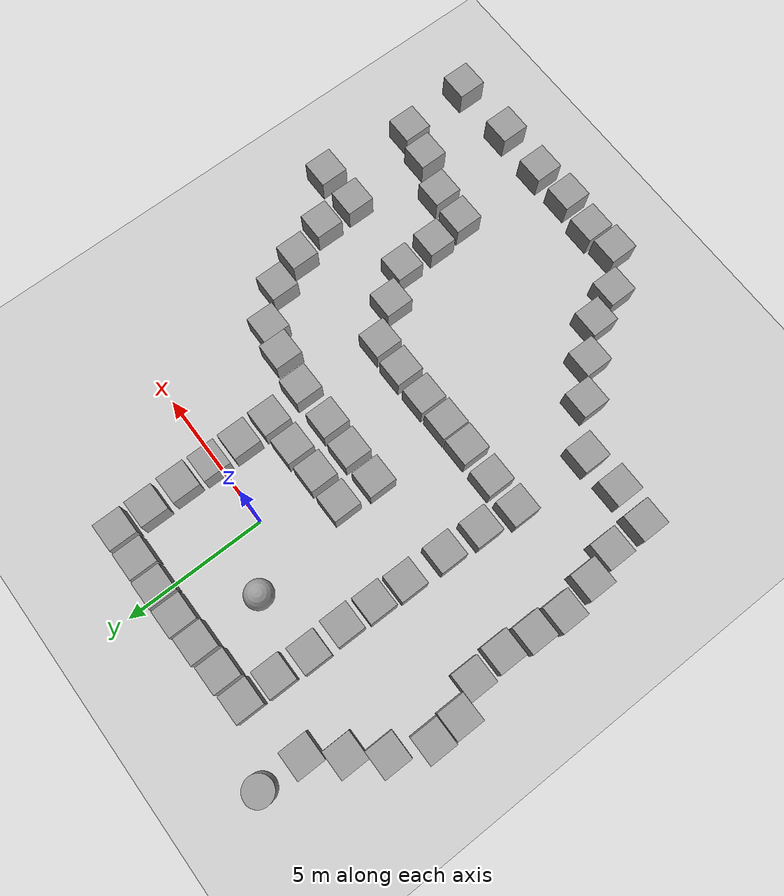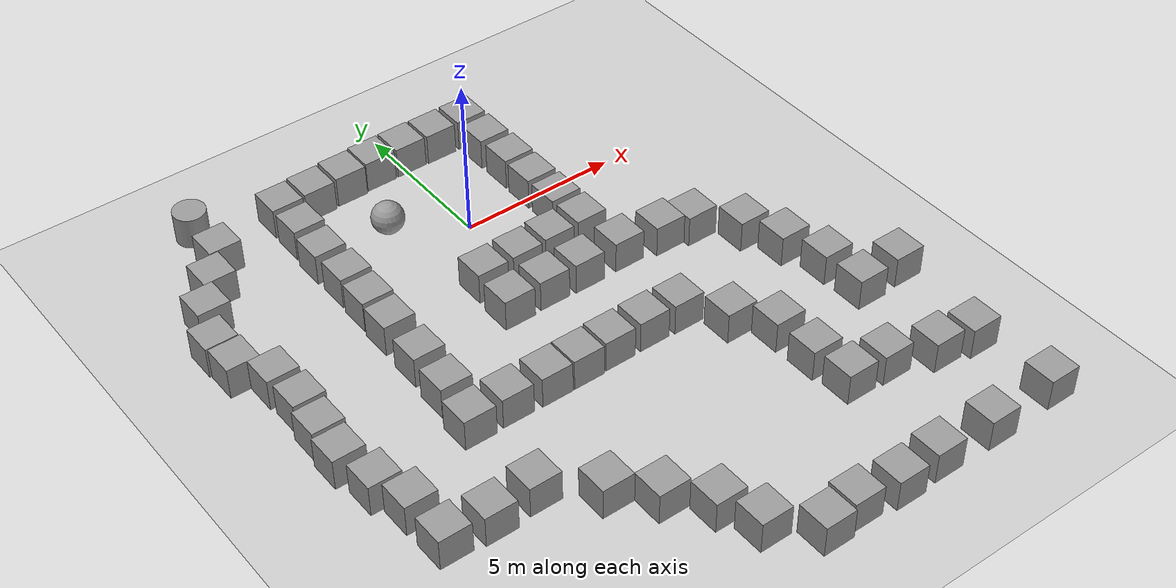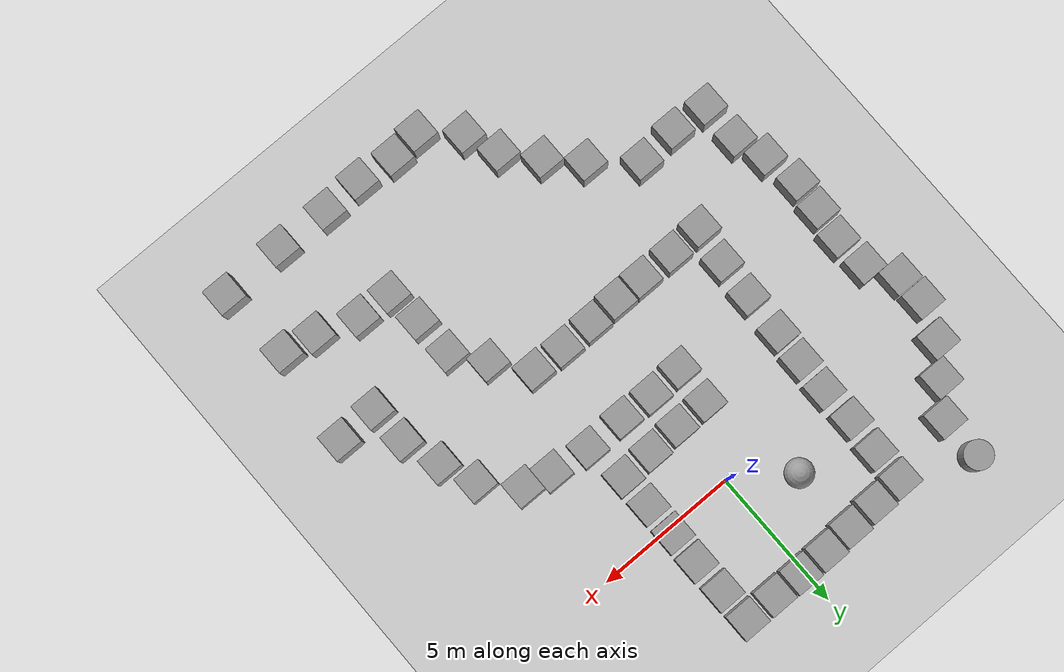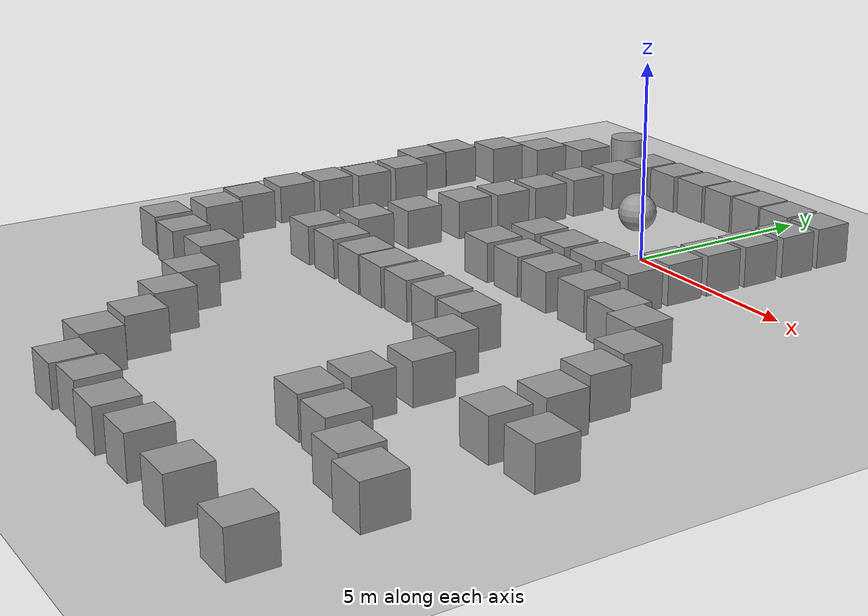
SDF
<sdf version="1.7">
 <world name="default">
  <plugin filename="gz-sim-physics-system" name="gz::sim::systems::Physics"/>
  <plugin filename="gz-sim-user-commands-system" name="gz::sim::systems::UserCommands"/>
  <plugin filename="gz-sim-scene-broadcaster-system" name="gz::sim::systems::SceneBroadcaster"/>
  <plugin filename="gz-sim-sensors-system" name="gz::sim::systems::Sensors">
   <render_engine>ogre2</render_engine>
  </plugin>
  <plugin filename="gz-sim-imu-system" name="gz::sim::systems::Imu"/>
  <light name="sun" type="directional">
   <pose>0 0 10 0 -0 0</pose>
   <diffuse>0.8 0.8 0.8 1</diffuse>
   <specular>0.2 0.2 0.2 1</specular>
   <attenuation>
    <range>1000</range>
    <constant>0.9</constant>
    <linear>0.01</linear>
    <quadratic>0.001</quadratic>
   </attenuation>
   <direction>-0.5 0.1 -0.9</direction>
   <spot><inner_angle>0</inner_angle><outer_angle>0</outer_angle><falloff>0</falloff></spot>
  </light>
  <model name="ground_plane">
   <static>1</static>
   <link name="link">
    <collision name="collision">
     <geometry><plane><normal>0 0 1</normal><size>100 100</size></plane></geometry>
     <surface>
      <contact><collide_bitmask>65535</collide_bitmask></contact>
      <friction><ode><mu>100</mu><mu2>50</mu2></ode></friction>
     </surface>
    </collision>
    <visual name="visual">
     <cast_shadows>0</cast_shadows>
     <geometry><plane><normal>0 0 1</normal><size>100 100</size></plane></geometry>
     <material>
      <script><uri>file://media/materials/scripts/gazebo.material</uri><name>Gazebo/Grey</name></script>
     </material>
    </visual>
   </link>
  </model>
  <gravity>0 0 -9.8</gravity>
  <magnetic_field>6e-06 2.3e-05 -4.2e-05</magnetic_field>
  <atmosphere type="adiabatic"/>
  <physics type="ode">
   <max_step_size>0.001</max_step_size>
   <real_time_factor>1</real_time_factor>
   <real_time_update_rate>1000</real_time_update_rate>
  </physics>
  <scene><ambient>0.4 0.4 0.4 1</ambient><background>0.7 0.7 0.7 1</background><shadows>1</shadows></scene>
  <audio><device>default</device></audio>
  <spherical_coordinates>
   <surface_model>EARTH_WGS84</surface_model>
   <latitude_deg>0</latitude_deg>
   <longitude_deg>0</longitude_deg>
   <elevation>0</elevation>
   <heading_deg>0</heading_deg>
  </spherical_coordinates>
  <model name="unit_sphere">
   <pose>-1.89959 1.34417 0.5 0 -0 0</pose>
   <link name="link">
    <inertial>
     <mass>1</mass>
     <inertia><ixx>0.1</ixx><ixy>0</ixy><ixz>0</ixz><iyy>0.1</iyy><iyz>0</iyz><izz>0.1</izz></inertia>
    </inertial>
    <collision name="collision"><geometry><sphere><radius>0.5</radius></sphere></geometry></collision>
    <visual name="visual">
     <geometry><sphere><radius>0.5</radius></sphere></geometry>
     <material>
      <script><name>Gazebo/Grey</name><uri>file://media/materials/scripts/gazebo.material</uri></script>
     </material>
    </visual>
   </link>
  </model>
  <model name="unit_cylinder">
   <pose>-6.5073 4.57267 0.499994 -3e-06 -1e-06 -0</pose>
   <link name="link">
    <inertial>
     <mass>1</mass>
     <inertia><ixx>0.145833</ixx><ixy>0</ixy><ixz>0</ixz><iyy>0.145833</iyy><iyz>0</iyz><izz>0.125</izz></inertia>
    </inertial>
    <collision name="collision">
     <geometry><cylinder><radius>0.5</radius><length>1</length></cylinder></geometry>
    </collision>
    <visual name="visual">
     <geometry><cylinder><radius>0.5</radius><length>1</length></cylinder></geometry>
     <material>
      <script><name>Gazebo/Grey</name><uri>file://media/materials/scripts/gazebo.material</uri></script>
     </material>
    </visual>
   </link>
  </model>
  <model name="unit_box">
   <pose>-4.1569 3.53697 0.499995 -1e-05 -0 -0</pose>
   <link name="link">
    <inertial>
     <mass>1</mass>
     <inertia>
      <ixx>0.166667</ixx>
      <ixy>0</ixy>
      <ixz>0</ixz>
      <iyy>0.166667</iyy>
      <iyz>0</iyz>
      <izz>0.166667</izz>
     </inertia>
    </inertial>
    <collision name="collision"><geometry><box><size>1 1 1</size></box></geometry></collision>
    <visual name="visual">
     <geometry><box><size>1 1 1</size></box></geometry>
     <material>
      <script><name>Gazebo/Grey</name><uri>file://media/materials/scripts/gazebo.material</uri></script>
     </material>
    </visual>
   </link>
  </model>
  <model name="unit_box_0">
   <pose>-3.06799 3.59313 0.499995 1e-05 -0 0</pose>
   <link name="link">
    <inertial>
     <mass>1</mass>
     <inertia>
      <ixx>0.166667</ixx>
      <ixy>0</ixy>
      <ixz>0</ixz>
      <iyy>0.166667</iyy>
      <iyz>0</iyz>
      <izz>0.166667</izz>
     </inertia>
    </inertial>
    <collision name="collision"><geometry><box><size>1 1 1</size></box></geometry></collision>
    <visual name="visual">
     <geometry><box><size>1 1 1</size></box></geometry>
     <material>
      <script><name>Gazebo/Grey</name><uri>file://media/materials/scripts/gazebo.material</uri></script>
     </material>
    </visual>
   </link>
  </model>
  <model name="unit_box_0_clone">
   <pose>-1.96819 3.65529 0.499995 0 -1e-05 0</pose>
   <link name="link">
    <inertial>
     <mass>1</mass>
     <inertia>
      <ixx>0.166667</ixx>
      <ixy>0</ixy>
      <ixz>0</ixz>
      <iyy>0.166667</iyy>
      <iyz>0</iyz>
      <izz>0.166667</izz>
     </inertia>
    </inertial>
    <collision name="collision"><geometry><box><size>1 1 1</size></box></geometry></collision>
    <visual name="visual">
     <geometry><box><size>1 1 1</size></box></geometry>
     <material>
      <script><name>Gazebo/Grey</name><uri>file://media/materials/scripts/gazebo.material</uri></script>
     </material>
    </visual>
   </link>
  </model>
  <model name="unit_box_0_clone_0">
   <pose>-0.911173 3.71544 0.499995 -1e-05 0 0</pose>
   <link name="link">
    <inertial>
     <mass>1</mass>
     <inertia>
      <ixx>0.166667</ixx>
      <ixy>0</ixy>
      <ixz>0</ixz>
      <iyy>0.166667</iyy>
      <iyz>0</iyz>
      <izz>0.166667</izz>
     </inertia>
    </inertial>
    <collision name="collision"><geometry><box><size>1 1 1</size></box></geometry></collision>
    <visual name="visual">
     <geometry><box><size>1 1 1</size></box></geometry>
     <material>
      <script><name>Gazebo/Grey</name><uri>file://media/materials/scripts/gazebo.material</uri></script>
     </material>
    </visual>
   </link>
  </model>
  <model name="unit_box_0_clone_1">
   <pose>0.16453 3.72613 0.499995 0 -1e-05 0</pose>
   <link name="link">
    <inertial>
     <mass>1</mass>
     <inertia>
      <ixx>0.166667</ixx>
      <ixy>0</ixy>
      <ixz>0</ixz>
      <iyy>0.166667</iyy>
      <iyz>0</iyz>
      <izz>0.166667</izz>
     </inertia>
    </inertial>
    <collision name="collision"><geometry><box><size>1 1 1</size></box></geometry></collision>
    <visual name="visual">
     <geometry><box><size>1 1 1</size></box></geometry>
     <material>
      <script><name>Gazebo/Grey</name><uri>file://media/materials/scripts/gazebo.material</uri></script>
     </material>
    </visual>
   </link>
  </model>
  <model name="unit_box_0_clone_2">
   <pose>1.24025 3.7085 0.499995 1e-05 -0 0</pose>
   <link name="link">
    <inertial>
     <mass>1</mass>
     <inertia>
      <ixx>0.166667</ixx>
      <ixy>0</ixy>
      <ixz>0</ixz>
      <iyy>0.166667</iyy>
      <iyz>0</iyz>
      <izz>0.166667</izz>
     </inertia>
    </inertial>
    <collision name="collision"><geometry><box><size>1 1 1</size></box></geometry></collision>
    <visual name="visual">
     <geometry><box><size>1 1 1</size></box></geometry>
     <material>
      <script><name>Gazebo/Grey</name><uri>file://media/materials/scripts/gazebo.material</uri></script>
     </material>
    </visual>
   </link>
  </model>
  <model name="unit_box_0_clone_0_clone">
   <pose>2.36279 3.7105 0.499995 1e-05 -0 0</pose>
   <link name="link">
    <inertial>
     <mass>1</mass>
     <inertia>
      <ixx>0.166667</ixx>
      <ixy>0</ixy>
      <ixz>0</ixz>
      <iyy>0.166667</iyy>
      <iyz>0</iyz>
      <izz>0.166667</izz>
     </inertia>
    </inertial>
    <collision name="collision"><geometry><box><size>1 1 1</size></box></geometry></collision>
    <visual name="visual">
     <geometry><box><size>1 1 1</size></box></geometry>
     <material>
      <script><name>Gazebo/Grey</name><uri>file://media/materials/scripts/gazebo.material</uri></script>
     </material>
    </visual>
   </link>
  </model>
  <model name="unit_box_0_clone_0_clone_0">
   <pose>-4.17281 2.3552 0.499995 0 1e-05 0</pose>
   <link name="link">
    <inertial>
     <mass>1</mass>
     <inertia>
      <ixx>0.166667</ixx>
      <ixy>0</ixy>
      <ixz>0</ixz>
      <iyy>0.166667</iyy>
      <iyz>0</iyz>
      <izz>0.166667</izz>
     </inertia>
    </inertial>
    <collision name="collision"><geometry><box><size>1 1 1</size></box></geometry></collision>
    <visual name="visual">
     <geometry><box><size>1 1 1</size></box></geometry>
     <material>
      <script><name>Gazebo/Grey</name><uri>file://media/materials/scripts/gazebo.material</uri></script>
     </material>
    </visual>
   </link>
  </model>
  <model name="unit_box_0_clone_0_clone_1">
   <pose>-4.24576 1.11383 0.499995 1e-05 -0 0</pose>
   <link name="link">
    <inertial>
     <mass>1</mass>
     <inertia>
      <ixx>0.166667</ixx>
      <ixy>0</ixy>
      <ixz>0</ixz>
      <iyy>0.166667</iyy>
      <iyz>0</iyz>
      <izz>0.166667</izz>
     </inertia>
    </inertial>
    <collision name="collision"><geometry><box><size>1 1 1</size></box></geometry></collision>
    <visual name="visual">
     <geometry><box><size>1 1 1</size></box></geometry>
     <material>
      <script><name>Gazebo/Grey</name><uri>file://media/materials/scripts/gazebo.material</uri></script>
     </material>
    </visual>
   </link>
  </model>
  <model name="unit_box_0_clone_0_clone_2">
   <pose>-4.20987 -0.150409 0.499995 -1e-05 -0 0</pose>
   <link name="link">
    <inertial>
     <mass>1</mass>
     <inertia>
      <ixx>0.166667</ixx>
      <ixy>0</ixy>
      <ixz>0</ixz>
      <iyy>0.166667</iyy>
      <iyz>0</iyz>
      <izz>0.166667</izz>
     </inertia>
    </inertial>
    <collision name="collision"><geometry><box><size>1 1 1</size></box></geometry></collision>
    <visual name="visual">
     <geometry><box><size>1 1 1</size></box></geometry>
     <material>
      <script><name>Gazebo/Grey</name><uri>file://media/materials/scripts/gazebo.material</uri></script>
     </material>
    </visual>
   </link>
  </model>
  <model name="unit_box_0_clone_0_clone_3">
   <pose>-4.25814 -1.32706 0.499995 1e-05 -0 0</pose>
   <link name="link">
    <inertial>
     <mass>1</mass>
     <inertia>
      <ixx>0.166667</ixx>
      <ixy>0</ixy>
      <ixz>0</ixz>
      <iyy>0.166667</iyy>
      <iyz>0</iyz>
      <izz>0.166667</izz>
     </inertia>
    </inertial>
    <collision name="collision"><geometry><box><size>1 1 1</size></box></geometry></collision>
    <visual name="visual">
     <geometry><box><size>1 1 1</size></box></geometry>
     <material>
      <script><name>Gazebo/Grey</name><uri>file://media/materials/scripts/gazebo.material</uri></script>
     </material>
    </visual>
   </link>
  </model>
  <model name="unit_box_0_clone_0_clone_4">
   <pose>2.38394 2.53787 0.499995 -1e-05 -0 0</pose>
   <link name="link">
    <inertial>
     <mass>1</mass>
     <inertia>
      <ixx>0.166667</ixx>
      <ixy>0</ixy>
      <ixz>0</ixz>
      <iyy>0.166667</iyy>
      <iyz>0</iyz>
      <izz>0.166667</izz>
     </inertia>
    </inertial>
    <collision name="collision"><geometry><box><size>1 1 1</size></box></geometry></collision>
    <visual name="visual">
     <geometry><box><size>1 1 1</size></box></geometry>
     <material>
      <script><name>Gazebo/Grey</name><uri>file://media/materials/scripts/gazebo.material</uri></script>
     </material>
    </visual>
   </link>
  </model>
  <model name="unit_box_0_clone_0_clone_5">
   <pose>2.40979 1.32505 0.499995 1e-05 -0 0</pose>
   <link name="link">
    <inertial>
     <mass>1</mass>
     <inertia>
      <ixx>0.166667</ixx>
      <ixy>0</ixy>
      <ixz>0</ixz>
      <iyy>0.166667</iyy>
      <iyz>0</iyz>
      <izz>0.166667</izz>
     </inertia>
    </inertial>
    <collision name="collision"><geometry><box><size>1 1 1</size></box></geometry></collision>
    <visual name="visual">
     <geometry><box><size>1 1 1</size></box></geometry>
     <material>
      <script><name>Gazebo/Grey</name><uri>file://media/materials/scripts/gazebo.material</uri></script>
     </material>
    </visual>
   </link>
  </model>
  <model name="unit_box_0_clone_0_clone_6">
   <pose>2.39074 0.174868 0.499995 -1e-05 -0 0</pose>
   <link name="link">
    <inertial>
     <mass>1</mass>
     <inertia>
      <ixx>0.166667</ixx>
      <ixy>0</ixy>
      <ixz>0</ixz>
      <iyy>0.166667</iyy>
      <iyz>0</iyz>
      <izz>0.166667</izz>
     </inertia>
    </inertial>
    <collision name="collision"><geometry><box><size>1 1 1</size></box></geometry></collision>
    <visual name="visual">
     <geometry><box><size>1 1 1</size></box></geometry>
     <material>
      <script><name>Gazebo/Grey</name><uri>file://media/materials/scripts/gazebo.material</uri></script>
     </material>
    </visual>
   </link>
  </model>
  <model name="unit_box_0_clone_0_clone_7">
   <pose>2.39749 -0.993496 0.499995 0 -1e-05 0</pose>
   <link name="link">
    <inertial>
     <mass>1</mass>
     <inertia>
      <ixx>0.166667</ixx>
      <ixy>0</ixy>
      <ixz>0</ixz>
      <iyy>0.166667</iyy>
      <iyz>0</iyz>
      <izz>0.166667</izz>
     </inertia>
    </inertial>
    <collision name="collision"><geometry><box><size>1 1 1</size></box></geometry></collision>
    <visual name="visual">
     <geometry><box><size>1 1 1</size></box></geometry>
     <material>
      <script><name>Gazebo/Grey</name><uri>file://media/materials/scripts/gazebo.material</uri></script>
     </material>
    </visual>
   </link>
  </model>
  <model name="unit_box_0_clone_0_clone_8">
   <pose>2.41776 -2.1845 0.499995 -1e-05 -0 0</pose>
   <link name="link">
    <inertial>
     <mass>1</mass>
     <inertia>
      <ixx>0.166667</ixx>
      <ixy>0</ixy>
      <ixz>0</ixz>
      <iyy>0.166667</iyy>
      <iyz>0</iyz>
      <izz>0.166667</izz>
     </inertia>
    </inertial>
    <collision name="collision"><geometry><box><size>1 1 1</size></box></geometry></collision>
    <visual name="visual">
     <geometry><box><size>1 1 1</size></box></geometry>
     <material>
      <script><name>Gazebo/Grey</name><uri>file://media/materials/scripts/gazebo.material</uri></script>
     </material>
    </visual>
   </link>
  </model>
  <model name="unit_box_0_clone_0_clone_9">
   <pose>1.23782 -2.23289 0.499995 -1e-05 -0 -0</pose>
   <link name="link">
    <inertial>
     <mass>1</mass>
     <inertia>
      <ixx>0.166667</ixx>
      <ixy>0</ixy>
      <ixz>0</ixz>
      <iyy>0.166667</iyy>
      <iyz>0</iyz>
      <izz>0.166667</izz>
     </inertia>
    </inertial>
    <collision name="collision"><geometry><box><size>1 1 1</size></box></geometry></collision>
    <visual name="visual">
     <geometry><box><size>1 1 1</size></box></geometry>
     <material>
      <script><name>Gazebo/Grey</name><uri>file://media/materials/scripts/gazebo.material</uri></script>
     </material>
    </visual>
   </link>
  </model>
  <model name="unit_box_0_clone_0_clone_10">
   <pose>0.080718 -2.29183 0.499995 1e-05 -0 0</pose>
   <link name="link">
    <inertial>
     <mass>1</mass>
     <inertia>
      <ixx>0.166667</ixx>
      <ixy>0</ixy>
      <ixz>0</ixz>
      <iyy>0.166667</iyy>
      <iyz>0</iyz>
      <izz>0.166667</izz>
     </inertia>
    </inertial>
    <collision name="collision"><geometry><box><size>1 1 1</size></box></geometry></collision>
    <visual name="visual">
     <geometry><box><size>1 1 1</size></box></geometry>
     <material>
      <script><name>Gazebo/Grey</name><uri>file://media/materials/scripts/gazebo.material</uri></script>
     </material>
    </visual>
   </link>
  </model>
  <model name="unit_box_0_clone_0_clone_11">
   <pose>-1.11296 -2.31542 0.499995 -1e-05 -0 0</pose>
   <link name="link">
    <inertial>
     <mass>1</mass>
     <inertia>
      <ixx>0.166667</ixx>
      <ixy>0</ixy>
      <ixz>0</ixz>
      <iyy>0.166667</iyy>
      <iyz>0</iyz>
      <izz>0.166667</izz>
     </inertia>
    </inertial>
    <collision name="collision"><geometry><box><size>1 1 1</size></box></geometry></collision>
    <visual name="visual">
     <geometry><box><size>1 1 1</size></box></geometry>
     <material>
      <script><name>Gazebo/Grey</name><uri>file://media/materials/scripts/gazebo.material</uri></script>
     </material>
    </visual>
   </link>
  </model>
  <model name="unit_box_0_clone_0_clone_12">
   <pose>-4.31522 -2.47255 0.499995 0 -1e-05 0</pose>
   <link name="link">
    <inertial>
     <mass>1</mass>
     <inertia>
      <ixx>0.166667</ixx>
      <ixy>0</ixy>
      <ixz>0</ixz>
      <iyy>0.166667</iyy>
      <iyz>0</iyz>
      <izz>0.166667</izz>
     </inertia>
    </inertial>
    <collision name="collision"><geometry><box><size>1 1 1</size></box></geometry></collision>
    <visual name="visual">
     <geometry><box><size>1 1 1</size></box></geometry>
     <material>
      <script><name>Gazebo/Grey</name><uri>file://media/materials/scripts/gazebo.material</uri></script>
     </material>
    </visual>
   </link>
  </model>
  <model name="unit_box_0_clone_0_clone_13">
   <pose>-1.17626 -3.64786 0.499995 -1e-05 0 0</pose>
   <link name="link">
    <inertial>
     <mass>1</mass>
     <inertia>
      <ixx>0.166667</ixx>
      <ixy>0</ixy>
      <ixz>0</ixz>
      <iyy>0.166667</iyy>
      <iyz>0</iyz>
      <izz>0.166667</izz>
     </inertia>
    </inertial>
    <collision name="collision"><geometry><box><size>1 1 1</size></box></geometry></collision>
    <visual name="visual">
     <geometry><box><size>1 1 1</size></box></geometry>
     <material>
      <script><name>Gazebo/Grey</name><uri>file://media/materials/scripts/gazebo.material</uri></script>
     </material>
    </visual>
   </link>
  </model>
  <model name="unit_box_0_clone_0_clone_14">
   <pose>-4.36508 -3.97046 0.499995 0 -1e-05 0</pose>
   <link name="link">
    <inertial>
     <mass>1</mass>
     <inertia>
      <ixx>0.166667</ixx>
      <ixy>0</ixy>
      <ixz>0</ixz>
      <iyy>0.166667</iyy>
      <iyz>0</iyz>
      <izz>0.166667</izz>
     </inertia>
    </inertial>
    <collision name="collision"><geometry><box><size>1 1 1</size></box></geometry></collision>
    <visual name="visual">
     <geometry><box><size>1 1 1</size></box></geometry>
     <material>
      <script><name>Gazebo/Grey</name><uri>file://media/materials/scripts/gazebo.material</uri></script>
     </material>
    </visual>
   </link>
  </model>
  <model name="unit_box_0_clone_0_clone_15">
   <pose>-4.44192 -5.33744 0.499995 -1e-05 -0 -0</pose>
   <link name="link">
    <inertial>
     <mass>1</mass>
     <inertia>
      <ixx>0.166667</ixx>
      <ixy>0</ixy>
      <ixz>0</ixz>
      <iyy>0.166667</iyy>
      <iyz>0</iyz>
      <izz>0.166667</izz>
     </inertia>
    </inertial>
    <collision name="collision"><geometry><box><size>1 1 1</size></box></geometry></collision>
    <visual name="visual">
     <geometry><box><size>1 1 1</size></box></geometry>
     <material>
      <script><name>Gazebo/Grey</name><uri>file://media/materials/scripts/gazebo.material</uri></script>
     </material>
    </visual>
   </link>
  </model>
  <model name="unit_box_0_clone_0_clone_16">
   <pose>-4.62346 -6.65445 0.499995 0 1e-05 0</pose>
   <link name="link">
    <inertial>
     <mass>1</mass>
     <inertia>
      <ixx>0.166667</ixx>
      <ixy>0</ixy>
      <ixz>0</ixz>
      <iyy>0.166667</iyy>
      <iyz>0</iyz>
      <izz>0.166667</izz>
     </inertia>
    </inertial>
    <collision name="collision"><geometry><box><size>1 1 1</size></box></geometry></collision>
    <visual name="visual">
     <geometry><box><size>1 1 1</size></box></geometry>
     <material>
      <script><name>Gazebo/Grey</name><uri>file://media/materials/scripts/gazebo.material</uri></script>
     </material>
    </visual>
   </link>
  </model>
  <model name="unit_box_0_clone_0_clone_17">
   <pose>-3.39978 -6.61453 0.499995 -1e-05 -0 -0</pose>
   <link name="link">
    <inertial>
     <mass>1</mass>
     <inertia>
      <ixx>0.166667</ixx>
      <ixy>0</ixy>
      <ixz>0</ixz>
      <iyy>0.166667</iyy>
      <iyz>0</iyz>
      <izz>0.166667</izz>
     </inertia>
    </inertial>
    <collision name="collision"><geometry><box><size>1 1 1</size></box></geometry></collision>
    <visual name="visual">
     <geometry><box><size>1 1 1</size></box></geometry>
     <material>
      <script><name>Gazebo/Grey</name><uri>file://media/materials/scripts/gazebo.material</uri></script>
     </material>
    </visual>
   </link>
  </model>
  <model name="unit_box_0_clone_0_clone_18">
   <pose>-2.13817 -6.62929 0.499995 0 -1e-05 0</pose>
   <link name="link">
    <inertial>
     <mass>1</mass>
     <inertia>
      <ixx>0.166667</ixx>
      <ixy>0</ixy>
      <ixz>0</ixz>
      <iyy>0.166667</iyy>
      <iyz>0</iyz>
      <izz>0.166667</izz>
     </inertia>
    </inertial>
    <collision name="collision"><geometry><box><size>1 1 1</size></box></geometry></collision>
    <visual name="visual">
     <geometry><box><size>1 1 1</size></box></geometry>
     <material>
      <script><name>Gazebo/Grey</name><uri>file://media/materials/scripts/gazebo.material</uri></script>
     </material>
    </visual>
   </link>
  </model>
  <model name="unit_box_0_clone_0_clone_19">
   <pose>-1.08746 -6.62111 0.499995 -1e-05 0 0</pose>
   <link name="link">
    <inertial>
     <mass>1</mass>
     <inertia>
      <ixx>0.166667</ixx>
      <ixy>0</ixy>
      <ixz>0</ixz>
      <iyy>0.166667</iyy>
      <iyz>0</iyz>
      <izz>0.166667</izz>
     </inertia>
    </inertial>
    <collision name="collision"><geometry><box><size>1 1 1</size></box></geometry></collision>
    <visual name="visual">
     <geometry><box><size>1 1 1</size></box></geometry>
     <material>
      <script><name>Gazebo/Grey</name><uri>file://media/materials/scripts/gazebo.material</uri></script>
     </material>
    </visual>
   </link>
  </model>
  <model name="unit_box_0_clone_0_clone_20">
   <pose>0.002886 -6.58002 0.499995 0 -1e-05 0</pose>
   <link name="link">
    <inertial>
     <mass>1</mass>
     <inertia>
      <ixx>0.166667</ixx>
      <ixy>0</ixy>
      <ixz>0</ixz>
      <iyy>0.166667</iyy>
      <iyz>0</iyz>
      <izz>0.166667</izz>
     </inertia>
    </inertial>
    <collision name="collision"><geometry><box><size>1 1 1</size></box></geometry></collision>
    <visual name="visual">
     <geometry><box><size>1 1 1</size></box></geometry>
     <material>
      <script><name>Gazebo/Grey</name><uri>file://media/materials/scripts/gazebo.material</uri></script>
     </material>
    </visual>
   </link>
  </model>
  <model name="unit_box_0_clone_0_clone_21">
   <pose>1.1964 -6.56298 0.499995 -1e-05 -0 -0</pose>
   <link name="link">
    <inertial>
     <mass>1</mass>
     <inertia>
      <ixx>0.166667</ixx>
      <ixy>0</ixy>
      <ixz>0</ixz>
      <iyy>0.166667</iyy>
      <iyz>0</iyz>
      <izz>0.166667</izz>
     </inertia>
    </inertial>
    <collision name="collision"><geometry><box><size>1 1 1</size></box></geometry></collision>
    <visual name="visual">
     <geometry><box><size>1 1 1</size></box></geometry>
     <material>
      <script><name>Gazebo/Grey</name><uri>file://media/materials/scripts/gazebo.material</uri></script>
     </material>
    </visual>
   </link>
  </model>
  <model name="unit_box_0_clone_0_clone_22">
   <pose>2.36871 -6.59976 0.499995 1e-05 -0 0</pose>
   <link name="link">
    <inertial>
     <mass>1</mass>
     <inertia>
      <ixx>0.166667</ixx>
      <ixy>0</ixy>
      <ixz>0</ixz>
      <iyy>0.166667</iyy>
      <iyz>0</iyz>
      <izz>0.166667</izz>
     </inertia>
    </inertial>
    <collision name="collision"><geometry><box><size>1 1 1</size></box></geometry></collision>
    <visual name="visual">
     <geometry><box><size>1 1 1</size></box></geometry>
     <material>
      <script><name>Gazebo/Grey</name><uri>file://media/materials/scripts/gazebo.material</uri></script>
     </material>
    </visual>
   </link>
  </model>
  <model name="unit_box_0_clone_0_clone_23">
   <pose>0.043225 -3.59884 0.499995 -1e-05 -0 -0</pose>
   <link name="link">
    <inertial>
     <mass>1</mass>
     <inertia>
      <ixx>0.166667</ixx>
      <ixy>0</ixy>
      <ixz>0</ixz>
      <iyy>0.166667</iyy>
      <iyz>0</iyz>
      <izz>0.166667</izz>
     </inertia>
    </inertial>
    <collision name="collision"><geometry><box><size>1 1 1</size></box></geometry></collision>
    <visual name="visual">
     <geometry><box><size>1 1 1</size></box></geometry>
     <material>
      <script><name>Gazebo/Grey</name><uri>file://media/materials/scripts/gazebo.material</uri></script>
     </material>
    </visual>
   </link>
  </model>
  <model name="unit_box_0_clone_0_clone_24">
   <pose>1.24239 -3.628 0.499995 0 -1e-05 0</pose>
   <link name="link">
    <inertial>
     <mass>1</mass>
     <inertia>
      <ixx>0.166667</ixx>
      <ixy>0</ixy>
      <ixz>0</ixz>
      <iyy>0.166667</iyy>
      <iyz>0</iyz>
      <izz>0.166667</izz>
     </inertia>
    </inertial>
    <collision name="collision"><geometry><box><size>1 1 1</size></box></geometry></collision>
    <visual name="visual">
     <geometry><box><size>1 1 1</size></box></geometry>
     <material>
      <script><name>Gazebo/Grey</name><uri>file://media/materials/scripts/gazebo.material</uri></script>
     </material>
    </visual>
   </link>
  </model>
  <model name="unit_box_0_clone_0_clone_25">
   <pose>2.67302 -3.60419 0.499995 0 -1e-05 0</pose>
   <link name="link">
    <inertial>
     <mass>1</mass>
     <inertia>
      <ixx>0.166667</ixx>
      <ixy>0</ixy>
      <ixz>0</ixz>
      <iyy>0.166667</iyy>
      <iyz>0</iyz>
      <izz>0.166667</izz>
     </inertia>
    </inertial>
    <collision name="collision"><geometry><box><size>1 1 1</size></box></geometry></collision>
    <visual name="visual">
     <geometry><box><size>1 1 1</size></box></geometry>
     <material>
      <script><name>Gazebo/Grey</name><uri>file://media/materials/scripts/gazebo.material</uri></script>
     </material>
    </visual>
   </link>
  </model>
  <model name="unit_box_0_clone_0_clone_26">
   <pose>4.02273 -3.78129 0.499995 0 -1e-05 -0.005864</pose>
   <link name="link">
    <inertial>
     <mass>1</mass>
     <inertia>
      <ixx>0.166667</ixx>
      <ixy>0</ixy>
      <ixz>0</ixz>
      <iyy>0.166667</iyy>
      <iyz>0</iyz>
      <izz>0.166667</izz>
     </inertia>
    </inertial>
    <collision name="collision"><geometry><box><size>1 1 1</size></box></geometry></collision>
    <visual name="visual">
     <geometry><box><size>1 1 1</size></box></geometry>
     <material>
      <script><name>Gazebo/Grey</name><uri>file://media/materials/scripts/gazebo.material</uri></script>
     </material>
    </visual>
   </link>
  </model>
  <model name="unit_box_0_clone_0_clone_27">
   <pose>5.02147 -4.0028 0.499995 0 -1e-05 -0.005859</pose>
   <link name="link">
    <inertial>
     <mass>1</mass>
     <inertia>
      <ixx>0.166667</ixx>
      <ixy>0</ixy>
      <ixz>0</ixz>
      <iyy>0.166667</iyy>
      <iyz>0</iyz>
      <izz>0.166667</izz>
     </inertia>
    </inertial>
    <collision name="collision"><geometry><box><size>1 1 1</size></box></geometry></collision>
    <visual name="visual">
     <geometry><box><size>1 1 1</size></box></geometry>
     <material>
      <script><name>Gazebo/Grey</name><uri>file://media/materials/scripts/gazebo.material</uri></script>
     </material>
    </visual>
   </link>
  </model>
  <model name="unit_box_0_clone_0_clone_28">
   <pose>6.04314 -5.08983 0.499995 1e-05 -0 0</pose>
   <link name="link">
    <inertial>
     <mass>1</mass>
     <inertia>
      <ixx>0.166667</ixx>
      <ixy>0</ixy>
      <ixz>0</ixz>
      <iyy>0.166667</iyy>
      <iyz>0</iyz>
      <izz>0.166667</izz>
     </inertia>
    </inertial>
    <collision name="collision"><geometry><box><size>1 1 1</size></box></geometry></collision>
    <visual name="visual">
     <geometry><box><size>1 1 1</size></box></geometry>
     <material>
      <script><name>Gazebo/Grey</name><uri>file://media/materials/scripts/gazebo.material</uri></script>
     </material>
    </visual>
   </link>
  </model>
  <model name="unit_box_0_clone_0_clone_29">
   <pose>6.5359 -6.27368 0.499995 0 -1e-05 0</pose>
   <link name="link">
    <inertial>
     <mass>1</mass>
     <inertia>
      <ixx>0.166667</ixx>
      <ixy>0</ixy>
      <ixz>0</ixz>
      <iyy>0.166667</iyy>
      <iyz>0</iyz>
      <izz>0.166667</izz>
     </inertia>
    </inertial>
    <collision name="collision"><geometry><box><size>1 1 1</size></box></geometry></collision>
    <visual name="visual">
     <geometry><box><size>1 1 1</size></box></geometry>
     <material>
      <script><name>Gazebo/Grey</name><uri>file://media/materials/scripts/gazebo.material</uri></script>
     </material>
    </visual>
   </link>
  </model>
  <model name="unit_box_0_clone_0_clone_30">
   <pose>3.27993 -7.75286 0.499995 -1e-05 -0 -0</pose>
   <link name="link">
    <inertial>
     <mass>1</mass>
     <inertia>
      <ixx>0.166667</ixx>
      <ixy>0</ixy>
      <ixz>0</ixz>
      <iyy>0.166667</iyy>
      <iyz>0</iyz>
      <izz>0.166667</izz>
     </inertia>
    </inertial>
    <collision name="collision"><geometry><box><size>1 1 1</size></box></geometry></collision>
    <visual name="visual">
     <geometry><box><size>1 1 1</size></box></geometry>
     <material>
      <script><name>Gazebo/Grey</name><uri>file://media/materials/scripts/gazebo.material</uri></script>
     </material>
    </visual>
   </link>
  </model>
  <model name="unit_box_0_clone_0_clone_31">
   <pose>4.07102 -8.82442 0.499995 1e-05 -0 0</pose>
   <link name="link">
    <inertial>
     <mass>1</mass>
     <inertia>
      <ixx>0.166667</ixx>
      <ixy>0</ixy>
      <ixz>0</ixz>
      <iyy>0.166667</iyy>
      <iyz>0</iyz>
      <izz>0.166667</izz>
     </inertia>
    </inertial>
    <collision name="collision"><geometry><box><size>1 1 1</size></box></geometry></collision>
    <visual name="visual">
     <geometry><box><size>1 1 1</size></box></geometry>
     <material>
      <script><name>Gazebo/Grey</name><uri>file://media/materials/scripts/gazebo.material</uri></script>
     </material>
    </visual>
   </link>
  </model>
  <model name="unit_box_0_clone_0_clone_32">
   <pose>6.95782 -7.60603 0.499995 -1e-05 0 0</pose>
   <link name="link">
    <inertial>
     <mass>1</mass>
     <inertia>
      <ixx>0.166667</ixx>
      <ixy>0</ixy>
      <ixz>0</ixz>
      <iyy>0.166667</iyy>
      <iyz>0</iyz>
      <izz>0.166667</izz>
     </inertia>
    </inertial>
    <collision name="collision"><geometry><box><size>1 1 1</size></box></geometry></collision>
    <visual name="visual">
     <geometry><box><size>1 1 1</size></box></geometry>
     <material>
      <script><name>Gazebo/Grey</name><uri>file://media/materials/scripts/gazebo.material</uri></script>
     </material>
    </visual>
   </link>
  </model>
  <model name="unit_box_0_clone_0_clone_33">
   <pose>7.02407 -8.95791 0.499995 0 1e-05 0</pose>
   <link name="link">
    <inertial>
     <mass>1</mass>
     <inertia>
      <ixx>0.166667</ixx>
      <ixy>0</ixy>
      <ixz>0</ixz>
      <iyy>0.166667</iyy>
      <iyz>0</iyz>
      <izz>0.166667</izz>
     </inertia>
    </inertial>
    <collision name="collision"><geometry><box><size>1 1 1</size></box></geometry></collision>
    <visual name="visual">
     <geometry><box><size>1 1 1</size></box></geometry>
     <material>
      <script><name>Gazebo/Grey</name><uri>file://media/materials/scripts/gazebo.material</uri></script>
     </material>
    </visual>
   </link>
  </model>
  <model name="unit_box_0_clone_0_clone_34">
   <pose>4.1254 -10.2299 0.499995 -1e-05 -0 -0</pose>
   <link name="link">
    <inertial>
     <mass>1</mass>
     <inertia>
      <ixx>0.166667</ixx>
      <ixy>0</ixy>
      <ixz>0</ixz>
      <iyy>0.166667</iyy>
      <iyz>0</iyz>
      <izz>0.166667</izz>
     </inertia>
    </inertial>
    <collision name="collision"><geometry><box><size>1 1 1</size></box></geometry></collision>
    <visual name="visual">
     <geometry><box><size>1 1 1</size></box></geometry>
     <material>
      <script><name>Gazebo/Grey</name><uri>file://media/materials/scripts/gazebo.material</uri></script>
     </material>
    </visual>
   </link>
  </model>
  <model name="unit_box_0_clone_0_clone_35">
   <pose>4.25943 -11.4638 0.499995 0 1e-05 0</pose>
   <link name="link">
    <inertial>
     <mass>1</mass>
     <inertia>
      <ixx>0.166667</ixx>
      <ixy>0</ixy>
      <ixz>0</ixz>
      <iyy>0.166667</iyy>
      <iyz>0</iyz>
      <izz>0.166667</izz>
     </inertia>
    </inertial>
    <collision name="collision"><geometry><box><size>1 1 1</size></box></geometry></collision>
    <visual name="visual">
     <geometry><box><size>1 1 1</size></box></geometry>
     <material>
      <script><name>Gazebo/Grey</name><uri>file://media/materials/scripts/gazebo.material</uri></script>
     </material>
    </visual>
   </link>
  </model>
  <model name="unit_box_0_clone_0_clone_36">
   <pose>5.48583 -11.5234 0.499995 -1e-05 -0 -0</pose>
   <link name="link">
    <inertial>
     <mass>1</mass>
     <inertia>
      <ixx>0.166667</ixx>
      <ixy>0</ixy>
      <ixz>0</ixz>
      <iyy>0.166667</iyy>
      <iyz>0</iyz>
      <izz>0.166667</izz>
     </inertia>
    </inertial>
    <collision name="collision"><geometry><box><size>1 1 1</size></box></geometry></collision>
    <visual name="visual">
     <geometry><box><size>1 1 1</size></box></geometry>
     <material>
      <script><name>Gazebo/Grey</name><uri>file://media/materials/scripts/gazebo.material</uri></script>
     </material>
    </visual>
   </link>
  </model>
  <model name="unit_box_0_clone_0_clone_37">
   <pose>6.90055 -12.0173 0.499995 0 1e-05 0</pose>
   <link name="link">
    <inertial>
     <mass>1</mass>
     <inertia>
      <ixx>0.166667</ixx>
      <ixy>0</ixy>
      <ixz>0</ixz>
      <iyy>0.166667</iyy>
      <iyz>0</iyz>
      <izz>0.166667</izz>
     </inertia>
    </inertial>
    <collision name="collision"><geometry><box><size>1 1 1</size></box></geometry></collision>
    <visual name="visual">
     <geometry><box><size>1 1 1</size></box></geometry>
     <material>
      <script><name>Gazebo/Grey</name><uri>file://media/materials/scripts/gazebo.material</uri></script>
     </material>
    </visual>
   </link>
  </model>
  <model name="unit_box_0_clone_0_clone_38">
   <pose>8.45311 -8.89548 0.499995 0 1e-05 0</pose>
   <link name="link">
    <inertial>
     <mass>1</mass>
     <inertia>
      <ixx>0.166667</ixx>
      <ixy>0</ixy>
      <ixz>0</ixz>
      <iyy>0.166667</iyy>
      <iyz>0</iyz>
      <izz>0.166667</izz>
     </inertia>
    </inertial>
    <collision name="collision"><geometry><box><size>1 1 1</size></box></geometry></collision>
    <visual name="visual">
     <geometry><box><size>1 1 1</size></box></geometry>
     <material>
      <script><name>Gazebo/Grey</name><uri>file://media/materials/scripts/gazebo.material</uri></script>
     </material>
    </visual>
   </link>
  </model>
  <model name="unit_box_0_clone_0_clone_39">
   <pose>8.055 -12.2306 0.499995 -1e-05 -0 -0</pose>
   <link name="link">
    <inertial>
     <mass>1</mass>
     <inertia>
      <ixx>0.166667</ixx>
      <ixy>0</ixy>
      <ixz>0</ixz>
      <iyy>0.166667</iyy>
      <iyz>0</iyz>
      <izz>0.166667</izz>
     </inertia>
    </inertial>
    <collision name="collision"><geometry><box><size>1 1 1</size></box></geometry></collision>
    <visual name="visual">
     <geometry><box><size>1 1 1</size></box></geometry>
     <material>
      <script><name>Gazebo/Grey</name><uri>file://media/materials/scripts/gazebo.material</uri></script>
     </material>
    </visual>
   </link>
  </model>
  <model name="unit_box_0_clone_0_clone_40">
   <pose>8.27056 -14.8266 0.499995 0 1e-05 0</pose>
   <link name="link">
    <inertial>
     <mass>1</mass>
     <inertia>
      <ixx>0.166667</ixx>
      <ixy>0</ixy>
      <ixz>0</ixz>
      <iyy>0.166667</iyy>
      <iyz>0</iyz>
      <izz>0.166667</izz>
     </inertia>
    </inertial>
    <collision name="collision"><geometry><box><size>1 1 1</size></box></geometry></collision>
    <visual name="visual">
     <geometry><box><size>1 1 1</size></box></geometry>
     <material>
      <script><name>Gazebo/Grey</name><uri>file://media/materials/scripts/gazebo.material</uri></script>
     </material>
    </visual>
   </link>
  </model>
  <model name="unit_box_0_clone_0_clone_41">
   <pose>5.98704 -14.9052 0.499995 -1e-05 -0 -0</pose>
   <link name="link">
    <inertial>
     <mass>1</mass>
     <inertia>
      <ixx>0.166667</ixx>
      <ixy>0</ixy>
      <ixz>0</ixz>
      <iyy>0.166667</iyy>
      <iyz>0</iyz>
      <izz>0.166667</izz>
     </inertia>
    </inertial>
    <collision name="collision"><geometry><box><size>1 1 1</size></box></geometry></collision>
    <visual name="visual">
     <geometry><box><size>1 1 1</size></box></geometry>
     <material>
      <script><name>Gazebo/Grey</name><uri>file://media/materials/scripts/gazebo.material</uri></script>
     </material>
    </visual>
   </link>
  </model>
  <model name="unit_box_0_clone_0_clone_42">
   <pose>4.09455 -14.857 0.499995 0 1e-05 0</pose>
   <link name="link">
    <inertial>
     <mass>1</mass>
     <inertia>
      <ixx>0.166667</ixx>
      <ixy>0</ixy>
      <ixz>0</ixz>
      <iyy>0.166667</iyy>
      <iyz>0</iyz>
      <izz>0.166667</izz>
     </inertia>
    </inertial>
    <collision name="collision"><geometry><box><size>1 1 1</size></box></geometry></collision>
    <visual name="visual">
     <geometry><box><size>1 1 1</size></box></geometry>
     <material>
      <script><name>Gazebo/Grey</name><uri>file://media/materials/scripts/gazebo.material</uri></script>
     </material>
    </visual>
   </link>
  </model>
  <model name="unit_box_0_clone_0_clone_43">
   <pose>2.69141 -14.934 0.499995 -1e-05 -0 -0</pose>
   <link name="link">
    <inertial>
     <mass>1</mass>
     <inertia>
      <ixx>0.166667</ixx>
      <ixy>0</ixy>
      <ixz>0</ixz>
      <iyy>0.166667</iyy>
      <iyz>0</iyz>
      <izz>0.166667</izz>
     </inertia>
    </inertial>
    <collision name="collision"><geometry><box><size>1 1 1</size></box></geometry></collision>
    <visual name="visual">
     <geometry><box><size>1 1 1</size></box></geometry>
     <material>
      <script><name>Gazebo/Grey</name><uri>file://media/materials/scripts/gazebo.material</uri></script>
     </material>
    </visual>
   </link>
  </model>
  <model name="unit_box_0_clone_0_clone_44">
   <pose>1.33218 -14.7892 0.499995 1e-05 -0 0</pose>
   <link name="link">
    <inertial>
     <mass>1</mass>
     <inertia>
      <ixx>0.166667</ixx>
      <ixy>0</ixy>
      <ixz>0</ixz>
      <iyy>0.166667</iyy>
      <iyz>0</iyz>
      <izz>0.166667</izz>
     </inertia>
    </inertial>
    <collision name="collision"><geometry><box><size>1 1 1</size></box></geometry></collision>
    <visual name="visual">
     <geometry><box><size>1 1 1</size></box></geometry>
     <material>
      <script><name>Gazebo/Grey</name><uri>file://media/materials/scripts/gazebo.material</uri></script>
     </material>
    </visual>
   </link>
  </model>
  <model name="unit_box_0_clone_0_clone_45">
   <pose>0.258247 -14.9085 0.499995 -1e-05 0 0</pose>
   <link name="link">
    <inertial>
     <mass>1</mass>
     <inertia>
      <ixx>0.166667</ixx>
      <ixy>0</ixy>
      <ixz>0</ixz>
      <iyy>0.166667</iyy>
      <iyz>0</iyz>
      <izz>0.166667</izz>
     </inertia>
    </inertial>
    <collision name="collision"><geometry><box><size>1 1 1</size></box></geometry></collision>
    <visual name="visual">
     <geometry><box><size>1 1 1</size></box></geometry>
     <material>
      <script><name>Gazebo/Grey</name><uri>file://media/materials/scripts/gazebo.material</uri></script>
     </material>
    </visual>
   </link>
  </model>
  <model name="unit_box_0_clone_0_clone_46">
   <pose>-0.883449 -13.8699 0.499995 1e-05 -0 0</pose>
   <link name="link">
    <inertial>
     <mass>1</mass>
     <inertia>
      <ixx>0.166667</ixx>
      <ixy>0</ixy>
      <ixz>0</ixz>
      <iyy>0.166667</iyy>
      <iyz>0</iyz>
      <izz>0.166667</izz>
     </inertia>
    </inertial>
    <collision name="collision"><geometry><box><size>1 1 1</size></box></geometry></collision>
    <visual name="visual">
     <geometry><box><size>1 1 1</size></box></geometry>
     <material>
      <script><name>Gazebo/Grey</name><uri>file://media/materials/scripts/gazebo.material</uri></script>
     </material>
    </visual>
   </link>
  </model>
  <model name="unit_box_0_clone_0_clone_47">
   <pose>-1.34037 -12.702 0.499995 -1e-05 -0 -0</pose>
   <link name="link">
    <inertial>
     <mass>1</mass>
     <inertia>
      <ixx>0.166667</ixx>
      <ixy>0</ixy>
      <ixz>0</ixz>
      <iyy>0.166667</iyy>
      <iyz>0</iyz>
      <izz>0.166667</izz>
     </inertia>
    </inertial>
    <collision name="collision"><geometry><box><size>1 1 1</size></box></geometry></collision>
    <visual name="visual">
     <geometry><box><size>1 1 1</size></box></geometry>
     <material>
      <script><name>Gazebo/Grey</name><uri>file://media/materials/scripts/gazebo.material</uri></script>
     </material>
    </visual>
   </link>
  </model>
  <model name="unit_box_0_clone_0_clone_48">
   <pose>-2.26311 -11.6346 0.499995 -1e-05 -0 -0.004672</pose>
   <link name="link">
    <inertial>
     <mass>1</mass>
     <inertia>
      <ixx>0.166667</ixx>
      <ixy>0</ixy>
      <ixz>0</ixz>
      <iyy>0.166667</iyy>
      <iyz>0</iyz>
      <izz>0.166667</izz>
     </inertia>
    </inertial>
    <collision name="collision"><geometry><box><size>1 1 1</size></box></geometry></collision>
    <visual name="visual">
     <geometry><box><size>1 1 1</size></box></geometry>
     <material>
      <script><name>Gazebo/Grey</name><uri>file://media/materials/scripts/gazebo.material</uri></script>
     </material>
    </visual>
   </link>
  </model>
  <model name="unit_box_0_clone_0_clone_49">
   <pose>-3.25847 -10.6504 0.499995 -1e-05 -0 -0.004817</pose>
   <link name="link">
    <inertial>
     <mass>1</mass>
     <inertia>
      <ixx>0.166667</ixx>
      <ixy>0</ixy>
      <ixz>0</ixz>
      <iyy>0.166667</iyy>
      <iyz>0</iyz>
      <izz>0.166667</izz>
     </inertia>
    </inertial>
    <collision name="collision"><geometry><box><size>1 1 1</size></box></geometry></collision>
    <visual name="visual">
     <geometry><box><size>1 1 1</size></box></geometry>
     <material>
      <script><name>Gazebo/Grey</name><uri>file://media/materials/scripts/gazebo.material</uri></script>
     </material>
    </visual>
   </link>
  </model>
  <model name="unit_box_0_clone_0_clone_50">
   <pose>-4.64633 -9.49759 0.499995 0 -1e-05 0</pose>
   <link name="link">
    <inertial>
     <mass>1</mass>
     <inertia>
      <ixx>0.166667</ixx>
      <ixy>0</ixy>
      <ixz>0</ixz>
      <iyy>0.166667</iyy>
      <iyz>0</iyz>
      <izz>0.166667</izz>
     </inertia>
    </inertial>
    <collision name="collision"><geometry><box><size>1 1 1</size></box></geometry></collision>
    <visual name="visual">
     <geometry><box><size>1 1 1</size></box></geometry>
     <material>
      <script><name>Gazebo/Grey</name><uri>file://media/materials/scripts/gazebo.material</uri></script>
     </material>
    </visual>
   </link>
  </model>
  <model name="unit_box_0_clone_0_clone_51">
   <pose>-6.07051 -9.60801 0.499995 -1e-05 -0 0</pose>
   <link name="link">
    <inertial>
     <mass>1</mass>
     <inertia>
      <ixx>0.166667</ixx>
      <ixy>0</ixy>
      <ixz>0</ixz>
      <iyy>0.166667</iyy>
      <iyz>0</iyz>
      <izz>0.166667</izz>
     </inertia>
    </inertial>
    <collision name="collision"><geometry><box><size>1 1 1</size></box></geometry></collision>
    <visual name="visual">
     <geometry><box><size>1 1 1</size></box></geometry>
     <material>
      <script><name>Gazebo/Grey</name><uri>file://media/materials/scripts/gazebo.material</uri></script>
     </material>
    </visual>
   </link>
  </model>
  <model name="unit_box_0_clone_0_clone_52">
   <pose>-7.37276 -9.51967 0.5 0 -0 0</pose>
   <link name="link">
    <inertial>
     <mass>1</mass>
     <inertia>
      <ixx>0.166667</ixx>
      <ixy>0</ixy>
      <ixz>0</ixz>
      <iyy>0.166667</iyy>
      <iyz>0</iyz>
      <izz>0.166667</izz>
     </inertia>
    </inertial>
    <collision name="collision"><geometry><box><size>1 1 1</size></box></geometry></collision>
    <visual name="visual">
     <geometry><box><size>1 1 1</size></box></geometry>
     <material>
      <script><name>Gazebo/Grey</name><uri>file://media/materials/scripts/gazebo.material</uri></script>
     </material>
    </visual>
   </link>
  </model>
  <model name="unit_box_1">
   <pose>-7.41374 -8.11971 0.5 0 -0 0</pose>
   <link name="link">
    <inertial>
     <mass>1</mass>
     <inertia>
      <ixx>0.166667</ixx>
      <ixy>0</ixy>
      <ixz>0</ixz>
      <iyy>0.166667</iyy>
      <iyz>0</iyz>
      <izz>0.166667</izz>
     </inertia>
    </inertial>
    <collision name="collision"><geometry><box><size>1 1 1</size></box></geometry></collision>
    <visual name="visual">
     <geometry><box><size>1 1 1</size></box></geometry>
     <material>
      <script><name>Gazebo/Grey</name><uri>file://media/materials/scripts/gazebo.material</uri></script>
     </material>
    </visual>
   </link>
  </model>
  <model name="unit_box_0_clone_0_clone_53">
   <pose>-7.75619 -7.03144 0.5 0 -0 0</pose>
   <link name="link">
    <inertial>
     <mass>1</mass>
     <inertia>
      <ixx>0.166667</ixx>
      <ixy>0</ixy>
      <ixz>0</ixz>
      <iyy>0.166667</iyy>
      <iyz>0</iyz>
      <izz>0.166667</izz>
     </inertia>
    </inertial>
    <collision name="collision"><geometry><box><size>1 1 1</size></box></geometry></collision>
    <visual name="visual">
     <geometry><box><size>1 1 1</size></box></geometry>
     <material>
      <script><name>Gazebo/Grey</name><uri>file://media/materials/scripts/gazebo.material</uri></script>
     </material>
    </visual>
   </link>
  </model>
  <model name="unit_box_0_clone_0_clone_54">
   <pose>-7.98718 -5.74413 0.5 0 -0 0</pose>
   <link name="link">
    <inertial>
     <mass>1</mass>
     <inertia>
      <ixx>0.166667</ixx>
      <ixy>0</ixy>
      <ixz>0</ixz>
      <iyy>0.166667</iyy>
      <iyz>0</iyz>
      <izz>0.166667</izz>
     </inertia>
    </inertial>
    <collision name="collision"><geometry><box><size>1 1 1</size></box></geometry></collision>
    <visual name="visual">
     <geometry><box><size>1 1 1</size></box></geometry>
     <material>
      <script><name>Gazebo/Grey</name><uri>file://media/materials/scripts/gazebo.material</uri></script>
     </material>
    </visual>
   </link>
  </model>
  <model name="unit_box_0_clone_0_clone_55">
   <pose>-7.89327 -4.63281 0.5 0 -0 0</pose>
   <link name="link">
    <inertial>
     <mass>1</mass>
     <inertia>
      <ixx>0.166667</ixx>
      <ixy>0</ixy>
      <ixz>0</ixz>
      <iyy>0.166667</iyy>
      <iyz>0</iyz>
      <izz>0.166667</izz>
     </inertia>
    </inertial>
    <collision name="collision"><geometry><box><size>1 1 1</size></box></geometry></collision>
    <visual name="visual">
     <geometry><box><size>1 1 1</size></box></geometry>
     <material>
      <script><name>Gazebo/Grey</name><uri>file://media/materials/scripts/gazebo.material</uri></script>
     </material>
    </visual>
   </link>
  </model>
  <model name="unit_box_0_clone_0_clone_56">
   <pose>-7.76589 -3.51098 0.5 0 -0 0</pose>
   <link name="link">
    <inertial>
     <mass>1</mass>
     <inertia>
      <ixx>0.166667</ixx>
      <ixy>0</ixy>
      <ixz>0</ixz>
      <iyy>0.166667</iyy>
      <iyz>0</iyz>
      <izz>0.166667</izz>
     </inertia>
    </inertial>
    <collision name="collision"><geometry><box><size>1 1 1</size></box></geometry></collision>
    <visual name="visual">
     <geometry><box><size>1 1 1</size></box></geometry>
     <material>
      <script><name>Gazebo/Grey</name><uri>file://media/materials/scripts/gazebo.material</uri></script>
     </material>
    </visual>
   </link>
  </model>
  <model name="unit_box_0_clone_0_clone_57">
   <pose>-7.83665 -2.32057 0.5 0 -0 0</pose>
   <link name="link">
    <inertial>
     <mass>1</mass>
     <inertia>
      <ixx>0.166667</ixx>
      <ixy>0</ixy>
      <ixz>0</ixz>
      <iyy>0.166667</iyy>
      <iyz>0</iyz>
      <izz>0.166667</izz>
     </inertia>
    </inertial>
    <collision name="collision"><geometry><box><size>1 1 1</size></box></geometry></collision>
    <visual name="visual">
     <geometry><box><size>1 1 1</size></box></geometry>
     <material>
      <script><name>Gazebo/Grey</name><uri>file://media/materials/scripts/gazebo.material</uri></script>
     </material>
    </visual>
   </link>
  </model>
  <model name="unit_box_0_clone_0_clone_58">
   <pose>-8.44627 -1.31665 0.5 0 -0 0</pose>
   <link name="link">
    <inertial>
     <mass>1</mass>
     <inertia>
      <ixx>0.166667</ixx>
      <ixy>0</ixy>
      <ixz>0</ixz>
      <iyy>0.166667</iyy>
      <iyz>0</iyz>
      <izz>0.166667</izz>
     </inertia>
    </inertial>
    <collision name="collision"><geometry><box><size>1 1 1</size></box></geometry></collision>
    <visual name="visual">
     <geometry><box><size>1 1 1</size></box></geometry>
     <material>
      <script><name>Gazebo/Grey</name><uri>file://media/materials/scripts/gazebo.material</uri></script>
     </material>
    </visual>
   </link>
  </model>
  <model name="unit_box_0_clone_0_clone_59">
   <pose>-8.49484 -0.283119 0.5 0 -0 0</pose>
   <link name="link">
    <inertial>
     <mass>1</mass>
     <inertia>
      <ixx>0.166667</ixx>
      <ixy>0</ixy>
      <ixz>0</ixz>
      <iyy>0.166667</iyy>
      <iyz>0</iyz>
      <izz>0.166667</izz>
     </inertia>
    </inertial>
    <collision name="collision"><geometry><box><size>1 1 1</size></box></geometry></collision>
    <visual name="visual">
     <geometry><box><size>1 1 1</size></box></geometry>
     <material>
      <script><name>Gazebo/Grey</name><uri>file://media/materials/scripts/gazebo.material</uri></script>
     </material>
    </visual>
   </link>
  </model>
  <model name="unit_box_0_clone_0_clone_60">
   <pose>-8 1 0.5 0 -0 0</pose>
   <link name="link">
    <inertial>
     <mass>1</mass>
     <inertia>
      <ixx>0.166667</ixx>
      <ixy>0</ixy>
      <ixz>0</ixz>
      <iyy>0.166667</iyy>
      <iyz>0</iyz>
      <izz>0.166667</izz>
     </inertia>
    </inertial>
    <collision name="collision"><geometry><box><size>1 1 1</size></box></geometry></collision>
    <visual name="visual">
     <geometry><box><size>1 1 1</size></box></geometry>
     <material>
      <script><name>Gazebo/Grey</name><uri>file://media/materials/scripts/gazebo.material</uri></script>
     </material>
    </visual>
   </link>
  </model>
  <model name="unit_box_0_clone_0_clone_61">
   <pose>-7.24714 1.99544 0.5 0 -0 0</pose>
   <link name="link">
    <inertial>
     <mass>1</mass>
     <inertia>
      <ixx>0.166667</ixx>
      <ixy>0</ixy>
      <ixz>0</ixz>
      <iyy>0.166667</iyy>
      <iyz>0</iyz>
      <izz>0.166667</izz>
     </inertia>
    </inertial>
    <collision name="collision"><geometry><box><size>1 1 1</size></box></geometry></collision>
    <visual name="visual">
     <geometry><box><size>1 1 1</size></box></geometry>
     <material>
      <script><name>Gazebo/Grey</name><uri>file://media/materials/scripts/gazebo.material</uri></script>
     </material>
    </visual>
   </link>
  </model>
  <model name="unit_box_0_clone_0_clone_62">
   <pose>-6.49866 3.01837 0.5 0 -0 0</pose>
   <link name="link">
    <inertial>
     <mass>1</mass>
     <inertia>
      <ixx>0.166667</ixx>
      <ixy>0</ixy>
      <ixz>0</ixz>
      <iyy>0.166667</iyy>
      <iyz>0</iyz>
      <izz>0.166667</izz>
     </inertia>
    </inertial>
    <collision name="collision"><geometry><box><size>1 1 1</size></box></geometry></collision>
    <visual name="visual">
     <geometry><box><size>1 1 1</size></box></geometry>
     <material>
      <script><name>Gazebo/Grey</name><uri>file://media/materials/scripts/gazebo.material</uri></script>
     </material>
    </visual>
   </link>
  </model>
 </world>
</sdf>
